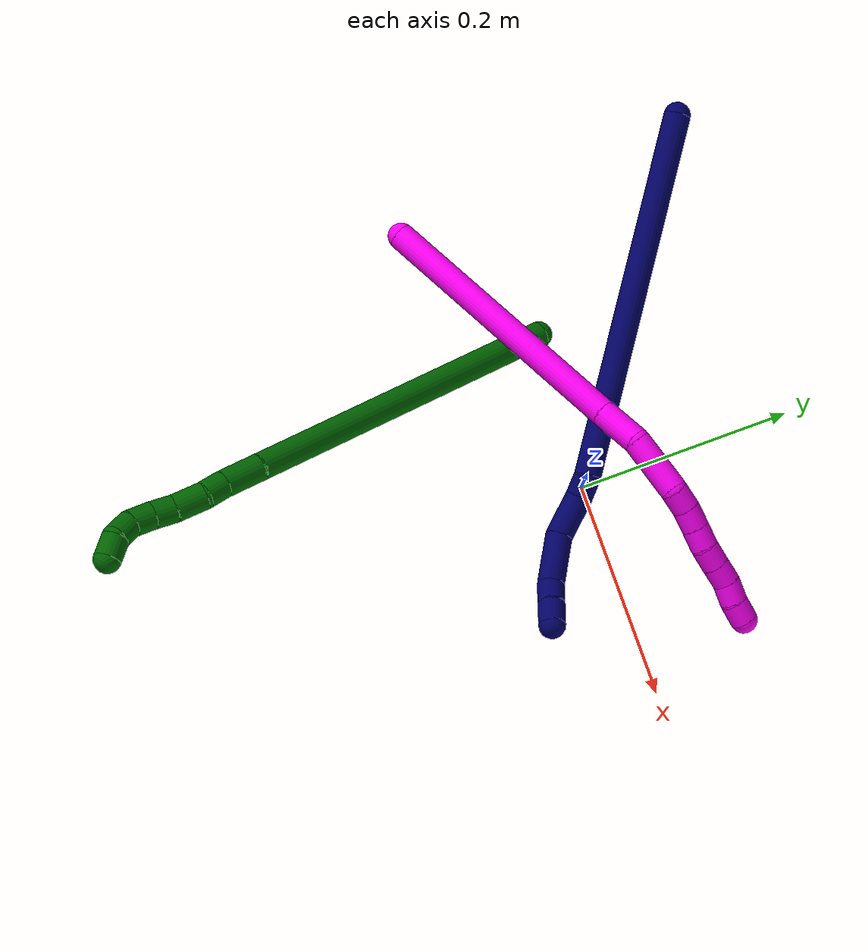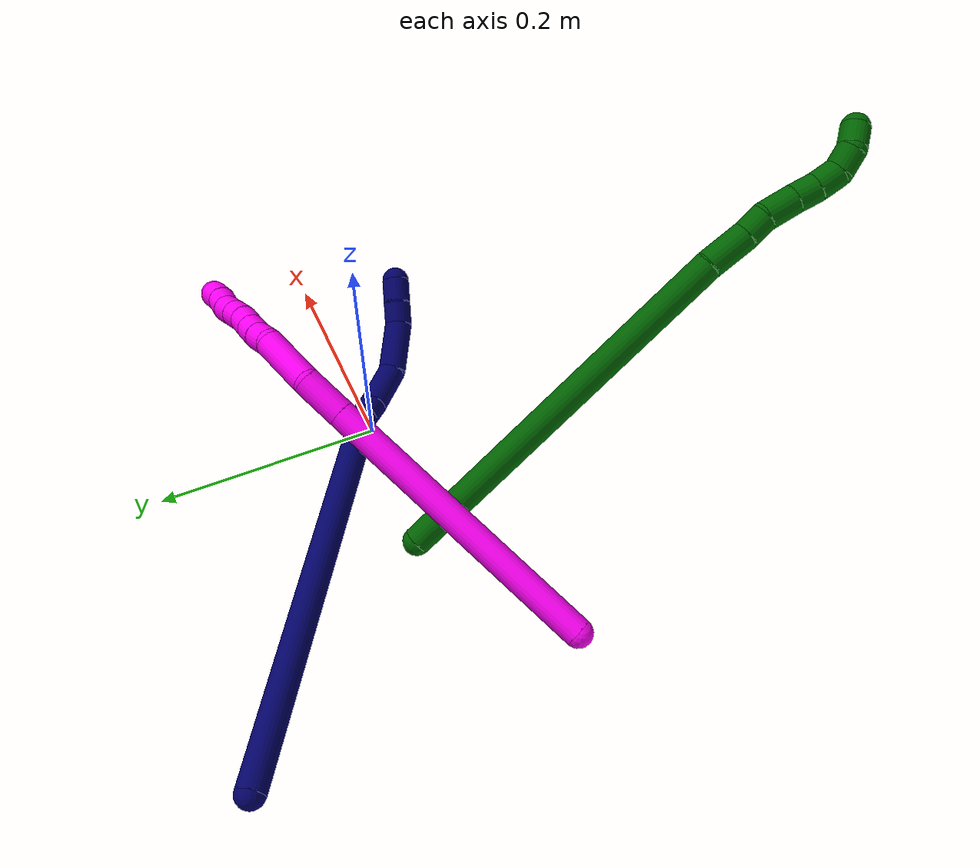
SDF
<sdf version="1.7">
 <world name="default">
  <model name="photoneo_s_sensor">
   <static>1</static>
   <pose>0 0 2 1.57079 1.57079 3.14159</pose>
   <link name="link">
    <inertial><mass>0.1</mass></inertial>
    <sensor name="sensor" type="depth">
     <update_rate>30</update_rate>
     <camera>
      <horizontal_fov>1.22</horizontal_fov>
      <image><width>1920</width><height>1200</height><format>B8G8R8</format></image>
      <clip><near>0.1</near><far>2</far></clip>
      <depth_camera><output>points</output></depth_camera>
     </camera>
     <plugin name="camera_plugin" filename="libgazebo_ros_depth_camera.so">
      <baseline>0.2</baseline>
      <alwaysOn>1</alwaysOn>
      <updateRate>0.0</updateRate>
      <cameraName>camera_ir</cameraName>
      <imageTopicName>/camera/color/image_raw</imageTopicName>
      <cameraInfoTopicName>/camera/color/camera_info</cameraInfoTopicName>
      <depthImageTopicName>/camera/depth/image_raw</depthImageTopicName>
      <depthImageCameraInfoTopicName>/camera/depth/camera_info</depthImageCameraInfoTopicName>
      <pointCloudTopicName>/camera/depth/points</pointCloudTopicName>
      <frameName>fr_optical</frameName>
      <pointCloudCutoff>0.1</pointCloudCutoff>
      <pointCloudCutoffMax>2.0</pointCloudCutoffMax>
      <distortionK1>0</distortionK1>
      <distortionK2>0</distortionK2>
      <distortionK3>0</distortionK3>
      <distortionT1>0</distortionT1>
      <distortionT2>0</distortionT2>
      <CxPrime>0</CxPrime>
      <Cx>0</Cx>
      <Cy>0</Cy>
      <focalLength>0</focalLength>
      <hackBaseline>0</hackBaseline>
     </plugin>
    </sensor>
   </link>
  </model>
  <model name="bin">
   <static>1</static>
   <link name="bottom">
    <collision name="collision-bottom">
     <pose>0 0 -0.01 0 -0 0</pose>
     <geometry><box><size>0.8 0.6 0.02</size></box></geometry>
     <surface>
      <friction><ode><mu>100</mu><mu2>100</mu2></ode></friction>
      <contact><collide_bitmask>65535</collide_bitmask></contact>
     </surface>
    </collision>
   </link>
   <link name="west_wall">
    <collision name="collision-west_wall">
     <pose>-0.41 0 0.1 0 -0 0</pose>
     <geometry><box><size>0.02 0.6 0.2</size></box></geometry>
     <surface>
      <friction><ode><mu>100</mu><mu2>100</mu2></ode></friction>
      <contact><collide_bitmask>65535</collide_bitmask></contact>
     </surface>
    </collision>
   </link>
   <link name="east_wall">
    <collision name="collision-east_wall">
     <pose>0.41 0 0.1 0 -0 0</pose>
     <geometry><box><size>0.02 0.6 0.2</size></box></geometry>
     <surface>
      <friction><ode><mu>100</mu><mu2>100</mu2></ode></friction>
      <contact><collide_bitmask>65535</collide_bitmask></contact>
     </surface>
    </collision>
   </link>
   <link name="south_wall">
    <collision name="collision-south_wall">
     <pose>0 -0.31 0.1 0 -0 0</pose>
     <geometry><box><size>0.8 0.02 0.2</size></box></geometry>
     <surface>
      <friction><ode><mu>100</mu><mu2>100</mu2></ode></friction>
      <contact><collide_bitmask>65535</collide_bitmask></contact>
     </surface>
    </collision>
   </link>
   <link name="north_wall">
    <collision name="collision-north_wall">
     <pose>0 0.31 0.1 0 -0 0</pose>
     <geometry><box><size>0.8 0.02 0.2</size></box></geometry>
     <surface>
      <friction><ode><mu>100</mu><mu2>100</mu2></ode></friction>
      <contact><collide_bitmask>65535</collide_bitmask></contact>
     </surface>
    </collision>
   </link>
  </model>
  <model name="6">
   <static>0</static>
   <link name="6">
    <collision name="collision-cylinder-e_1_1_4">
     <pose>-0.001159 -0.025586 0.163083 0.155622 -0.007019 -0.000547</pose>
     <geometry><cylinder><radius>0.0125</radius><length>0.330163</length></cylinder></geometry>
     <surface>
      <friction><ode><mu>1.16</mu><mu2>1.16</mu2><slip1>0</slip1><slip2>0</slip2></ode></friction>
      <contact><ode><kp>1e+06</kp><kd>1</kd><max_vel>0</max_vel><min_depth>0.001</min_depth></ode></contact>
     </surface>
    </collision>
    <visual name="visual-cylinder-e_1_1_4">
     <pose>-0.001159 -0.025586 0.163083 0.155622 -0.007019 -0.000547</pose>
     <geometry><cylinder><radius>0.0125</radius><length>0.330163</length></cylinder></geometry>
     <material><ambient>0 0.392157 0.003922 1</ambient></material>
    </visual>
    <collision name="collision-cylinder-e_2_4_5">
     <pose>-4.7e-05 -0.055048 0.344298 0.210563 0.121848 0.012892</pose>
     <geometry><cylinder><radius>0.0125</radius><length>0.037361</length></cylinder></geometry>
     <surface>
      <friction><ode><mu>1.16</mu><mu2>1.16</mu2><slip1>0</slip1><slip2>0</slip2></ode></friction>
      <contact><ode><kp>1e+06</kp><kd>1</kd><max_vel>0</max_vel><min_depth>0.001</min_depth></ode></contact>
     </surface>
    </collision>
    <visual name="visual-cylinder-e_2_4_5">
     <pose>-4.7e-05 -0.055048 0.344298 0.210563 0.121848 0.012892</pose>
     <geometry><cylinder><radius>0.0125</radius><length>0.037361</length></cylinder></geometry>
     <material><ambient>0 0.392157 0.003922 1</ambient></material>
    </visual>
    <collision name="collision-cylinder-e_3_5_6">
     <pose>0.003208 -0.06004 0.372867 0.106591 0.093487 0.004991</pose>
     <geometry><cylinder><radius>0.0125</radius><length>0.021084</length></cylinder></geometry>
     <surface>
      <friction><ode><mu>1.16</mu><mu2>1.16</mu2><slip1>0</slip1><slip2>0</slip2></ode></friction>
      <contact><ode><kp>1e+06</kp><kd>1</kd><max_vel>0</max_vel><min_depth>0.001</min_depth></ode></contact>
     </surface>
    </collision>
    <visual name="visual-cylinder-e_3_5_6">
     <pose>0.003208 -0.06004 0.372867 0.106591 0.093487 0.004991</pose>
     <geometry><cylinder><radius>0.0125</radius><length>0.021084</length></cylinder></geometry>
     <material><ambient>0 0.392157 0.003922 1</ambient></material>
    </visual>
    <collision name="collision-cylinder-e_4_6_7">
     <pose>0.008081 -0.065366 0.396432 0.310272 0.274978 0.043271</pose>
     <geometry><cylinder><radius>0.0125</radius><length>0.028649</length></cylinder></geometry>
     <surface>
      <friction><ode><mu>1.16</mu><mu2>1.16</mu2><slip1>0</slip1><slip2>0</slip2></ode></friction>
      <contact><ode><kp>1e+06</kp><kd>1</kd><max_vel>0</max_vel><min_depth>0.001</min_depth></ode></contact>
     </surface>
    </collision>
    <visual name="visual-cylinder-e_4_6_7">
     <pose>0.008081 -0.065366 0.396432 0.310272 0.274978 0.043271</pose>
     <geometry><cylinder><radius>0.0125</radius><length>0.028649</length></cylinder></geometry>
     <material><ambient>0 0.392157 0.003922 1</ambient></material>
    </visual>
    <collision name="collision-cylinder-e_5_7_8">
     <pose>0.013798 -0.073404 0.418823 0.391924 0.180335 0.035892</pose>
     <geometry><cylinder><radius>0.0125</radius><length>0.020378</length></cylinder></geometry>
     <surface>
      <friction><ode><mu>1.16</mu><mu2>1.16</mu2><slip1>0</slip1><slip2>0</slip2></ode></friction>
      <contact><ode><kp>1e+06</kp><kd>1</kd><max_vel>0</max_vel><min_depth>0.001</min_depth></ode></contact>
     </surface>
    </collision>
    <visual name="visual-cylinder-e_5_7_8">
     <pose>0.013798 -0.073404 0.418823 0.391924 0.180335 0.035892</pose>
     <geometry><cylinder><radius>0.0125</radius><length>0.020378</length></cylinder></geometry>
     <material><ambient>0 0.392157 0.003922 1</ambient></material>
    </visual>
    <collision name="collision-cylinder-e_6_8_9">
     <pose>0.016792 -0.08016 0.43816 0.282811 0.11071 0.015776</pose>
     <geometry><cylinder><radius>0.0125</radius><length>0.021109</length></cylinder></geometry>
     <surface>
      <friction><ode><mu>1.16</mu><mu2>1.16</mu2><slip1>0</slip1><slip2>0</slip2></ode></friction>
      <contact><ode><kp>1e+06</kp><kd>1</kd><max_vel>0</max_vel><min_depth>0.001</min_depth></ode></contact>
     </surface>
    </collision>
    <visual name="visual-cylinder-e_6_8_9">
     <pose>0.016792 -0.08016 0.43816 0.282811 0.11071 0.015776</pose>
     <geometry><cylinder><radius>0.0125</radius><length>0.021109</length></cylinder></geometry>
     <material><ambient>0 0.392157 0.003922 1</ambient></material>
    </visual>
    <collision name="collision-cylinder-e_7_9_10">
     <pose>0.017843 -0.081774 0.458342 -0.129163 -0.011324 0.000732</pose>
     <geometry><cylinder><radius>0.0125</radius><length>0.020387</length></cylinder></geometry>
     <surface>
      <friction><ode><mu>1.16</mu><mu2>1.16</mu2><slip1>0</slip1><slip2>0</slip2></ode></friction>
      <contact><ode><kp>1e+06</kp><kd>1</kd><max_vel>0</max_vel><min_depth>0.001</min_depth></ode></contact>
     </surface>
    </collision>
    <visual name="visual-cylinder-e_7_9_10">
     <pose>0.017843 -0.081774 0.458342 -0.129163 -0.011324 0.000732</pose>
     <geometry><cylinder><radius>0.0125</radius><length>0.020387</length></cylinder></geometry>
     <material><ambient>0 0.392157 0.003922 1</ambient></material>
    </visual>
    <collision name="collision-cylinder-e_8_10_2">
     <pose>0.020832 -0.075656 0.477175 -0.503414 0.302152 -0.078258</pose>
     <geometry><cylinder><radius>0.0125</radius><length>0.020868</length></cylinder></geometry>
     <surface>
      <friction><ode><mu>1.16</mu><mu2>1.16</mu2><slip1>0</slip1><slip2>0</slip2></ode></friction>
      <contact><ode><kp>1e+06</kp><kd>1</kd><max_vel>0</max_vel><min_depth>0.001</min_depth></ode></contact>
     </surface>
    </collision>
    <visual name="visual-cylinder-e_8_10_2">
     <pose>0.020832 -0.075656 0.477175 -0.503414 0.302152 -0.078258</pose>
     <geometry><cylinder><radius>0.0125</radius><length>0.020868</length></cylinder></geometry>
     <material><ambient>0 0.392157 0.003922 1</ambient></material>
    </visual>
    <collision name="collision-sphere-2">
     <pose>0.023937 -0.07085 0.485901 0 -0 0</pose>
     <geometry><sphere><radius>0.0125</radius></sphere></geometry>
     <surface>
      <friction><ode><mu>1.16</mu><mu2>1.16</mu2><slip1>0</slip1><slip2>0</slip2></ode></friction>
      <contact><ode><kp>1e+06</kp><kd>1</kd><max_vel>0</max_vel><min_depth>0.001</min_depth></ode></contact>
     </surface>
    </collision>
    <visual name="visual-sphere-2">
     <pose>0.023937 -0.07085 0.485901 0 -0 0</pose>
     <geometry><sphere><radius>0.0125</radius></sphere></geometry>
     <material><ambient>0 0.392157 0.003922 1</ambient></material>
    </visual>
    <collision name="collision-sphere-10">
     <pose>0.017727 -0.080461 0.46845 0 -0 0</pose>
     <geometry><sphere><radius>0.0125</radius></sphere></geometry>
     <surface>
      <friction><ode><mu>1.16</mu><mu2>1.16</mu2><slip1>0</slip1><slip2>0</slip2></ode></friction>
      <contact><ode><kp>1e+06</kp><kd>1</kd><max_vel>0</max_vel><min_depth>0.001</min_depth></ode></contact>
     </surface>
    </collision>
    <visual name="visual-sphere-10">
     <pose>0.017727 -0.080461 0.46845 0 -0 0</pose>
     <geometry><sphere><radius>0.0125</radius></sphere></geometry>
     <material><ambient>0 0.392157 0.003922 1</ambient></material>
    </visual>
    <collision name="collision-sphere-9">
     <pose>0.017958 -0.083087 0.448234 0 -0 0</pose>
     <geometry><sphere><radius>0.0125</radius></sphere></geometry>
     <surface>
      <friction><ode><mu>1.16</mu><mu2>1.16</mu2><slip1>0</slip1><slip2>0</slip2></ode></friction>
      <contact><ode><kp>1e+06</kp><kd>1</kd><max_vel>0</max_vel><min_depth>0.001</min_depth></ode></contact>
     </surface>
    </collision>
    <visual name="visual-sphere-9">
     <pose>0.017958 -0.083087 0.448234 0 -0 0</pose>
     <geometry><sphere><radius>0.0125</radius></sphere></geometry>
     <material><ambient>0 0.392157 0.003922 1</ambient></material>
    </visual>
    <collision name="collision-sphere-4">
     <pose>-0.002317 -0.051172 0.326165 0 -0 0</pose>
     <geometry><sphere><radius>0.0125</radius></sphere></geometry>
     <surface>
      <friction><ode><mu>1.16</mu><mu2>1.16</mu2><slip1>0</slip1><slip2>0</slip2></ode></friction>
      <contact><ode><kp>1e+06</kp><kd>1</kd><max_vel>0</max_vel><min_depth>0.001</min_depth></ode></contact>
     </surface>
    </collision>
    <visual name="visual-sphere-4">
     <pose>-0.002317 -0.051172 0.326165 0 -0 0</pose>
     <geometry><sphere><radius>0.0125</radius></sphere></geometry>
     <material><ambient>0 0.392157 0.003922 1</ambient></material>
    </visual>
    <collision name="collision-sphere-1">
     <geometry><sphere><radius>0.0125</radius></sphere></geometry>
     <surface>
      <friction><ode><mu>1.16</mu><mu2>1.16</mu2><slip1>0</slip1><slip2>0</slip2></ode></friction>
      <contact><ode><kp>1e+06</kp><kd>1</kd><max_vel>0</max_vel><min_depth>0.001</min_depth></ode></contact>
     </surface>
    </collision>
    <visual name="visual-sphere-1">
     <geometry><sphere><radius>0.0125</radius></sphere></geometry>
     <material><ambient>0 0.392157 0.003922 1</ambient></material>
    </visual>
    <collision name="collision-sphere-8">
     <pose>0.015626 -0.077232 0.428087 0 -0 0</pose>
     <geometry><sphere><radius>0.0125</radius></sphere></geometry>
     <surface>
      <friction><ode><mu>1.16</mu><mu2>1.16</mu2><slip1>0</slip1><slip2>0</slip2></ode></friction>
      <contact><ode><kp>1e+06</kp><kd>1</kd><max_vel>0</max_vel><min_depth>0.001</min_depth></ode></contact>
     </surface>
    </collision>
    <visual name="visual-sphere-8">
     <pose>0.015626 -0.077232 0.428087 0 -0 0</pose>
     <geometry><sphere><radius>0.0125</radius></sphere></geometry>
     <material><ambient>0 0.392157 0.003922 1</ambient></material>
    </visual>
    <collision name="collision-sphere-5">
     <pose>0.002224 -0.058923 0.36243 0 -0 0</pose>
     <geometry><sphere><radius>0.0125</radius></sphere></geometry>
     <surface>
      <friction><ode><mu>1.16</mu><mu2>1.16</mu2><slip1>0</slip1><slip2>0</slip2></ode></friction>
      <contact><ode><kp>1e+06</kp><kd>1</kd><max_vel>0</max_vel><min_depth>0.001</min_depth></ode></contact>
     </surface>
    </collision>
    <visual name="visual-sphere-5">
     <pose>0.002224 -0.058923 0.36243 0 -0 0</pose>
     <geometry><sphere><radius>0.0125</radius></sphere></geometry>
     <material><ambient>0 0.392157 0.003922 1</ambient></material>
    </visual>
    <collision name="collision-sphere-6">
     <pose>0.004192 -0.061156 0.383303 0 -0 0</pose>
     <geometry><sphere><radius>0.0125</radius></sphere></geometry>
     <surface>
      <friction><ode><mu>1.16</mu><mu2>1.16</mu2><slip1>0</slip1><slip2>0</slip2></ode></friction>
      <contact><ode><kp>1e+06</kp><kd>1</kd><max_vel>0</max_vel><min_depth>0.001</min_depth></ode></contact>
     </surface>
    </collision>
    <visual name="visual-sphere-6">
     <pose>0.004192 -0.061156 0.383303 0 -0 0</pose>
     <geometry><sphere><radius>0.0125</radius></sphere></geometry>
     <material><ambient>0 0.392157 0.003922 1</ambient></material>
    </visual>
    <collision name="collision-sphere-7">
     <pose>0.011971 -0.069575 0.40956 0 -0 0</pose>
     <geometry><sphere><radius>0.0125</radius></sphere></geometry>
     <surface>
      <friction><ode><mu>1.16</mu><mu2>1.16</mu2><slip1>0</slip1><slip2>0</slip2></ode></friction>
      <contact><ode><kp>1e+06</kp><kd>1</kd><max_vel>0</max_vel><min_depth>0.001</min_depth></ode></contact>
     </surface>
    </collision>
    <visual name="visual-sphere-7">
     <pose>0.011971 -0.069575 0.40956 0 -0 0</pose>
     <geometry><sphere><radius>0.0125</radius></sphere></geometry>
     <material><ambient>0 0.392157 0.003922 1</ambient></material>
    </visual>
    <inertial>
     <pose>0.002698 -0.040153 0.246024 0 -0 0</pose>
     <mass>0.5</mass>
     <inertia>
      <ixx>0.003029</ixx>
      <ixy>0</ixy>
      <ixz>0</ixz>
      <iyy>0.002985</iyy>
      <iyz>0</iyz>
      <izz>0.000526</izz>
     </inertia>
    </inertial>
   </link>
   <pose>-0.144144 0.011184 0.021771 0.283887 0.951537 -0.897248</pose>
  </model>
  <model name="7">
   <static>0</static>
   <link name="7">
    <collision name="collision-cylinder-e_1_1_4">
     <pose>0.08395 -0.134804 -0.069153 2.04478 0.505985 0.800673</pose>
     <geometry><cylinder><radius>0.0125</radius><length>0.346422</length></cylinder></geometry>
     <surface>
      <friction><ode><mu>1.16</mu><mu2>1.16</mu2><slip1>0</slip1><slip2>0</slip2></ode></friction>
      <contact><ode><kp>1e+06</kp><kd>1</kd><max_vel>0</max_vel><min_depth>0.001</min_depth></ode></contact>
     </surface>
    </collision>
    <visual name="visual-cylinder-e_1_1_4">
     <pose>0.08395 -0.134804 -0.069153 2.04478 0.505985 0.800673</pose>
     <geometry><cylinder><radius>0.0125</radius><length>0.346422</length></cylinder></geometry>
     <material><ambient>0.003922 0 0.403922 1</ambient></material>
    </visual>
    <collision name="collision-cylinder-e_2_4_5">
     <pose>0.171614 -0.275886 -0.145814 2.44513 0.362706 0.935451</pose>
     <geometry><cylinder><radius>0.0125</radius><length>0.020934</length></cylinder></geometry>
     <surface>
      <friction><ode><mu>1.16</mu><mu2>1.16</mu2><slip1>0</slip1><slip2>0</slip2></ode></friction>
      <contact><ode><kp>1e+06</kp><kd>1</kd><max_vel>0</max_vel><min_depth>0.001</min_depth></ode></contact>
     </surface>
    </collision>
    <visual name="visual-cylinder-e_2_4_5">
     <pose>0.171614 -0.275886 -0.145814 2.44513 0.362706 0.935451</pose>
     <geometry><cylinder><radius>0.0125</radius><length>0.020934</length></cylinder></geometry>
     <material><ambient>0.003922 0 0.403922 1</ambient></material>
    </visual>
    <collision name="collision-cylinder-e_3_5_6">
     <pose>0.180911 -0.300161 -0.161546 1.99948 0.27503 0.424324</pose>
     <geometry><cylinder><radius>0.0125</radius><length>0.04112</length></cylinder></geometry>
     <surface>
      <friction><ode><mu>1.16</mu><mu2>1.16</mu2><slip1>0</slip1><slip2>0</slip2></ode></friction>
      <contact><ode><kp>1e+06</kp><kd>1</kd><max_vel>0</max_vel><min_depth>0.001</min_depth></ode></contact>
     </surface>
    </collision>
    <visual name="visual-cylinder-e_3_5_6">
     <pose>0.180911 -0.300161 -0.161546 1.99948 0.27503 0.424324</pose>
     <geometry><cylinder><radius>0.0125</radius><length>0.04112</length></cylinder></geometry>
     <material><ambient>0.003922 0 0.403922 1</ambient></material>
    </visual>
    <collision name="collision-cylinder-e_4_6_7">
     <pose>0.198645 -0.338598 -0.17286 1.72078 0.531362 0.612729</pose>
     <geometry><cylinder><radius>0.0125</radius><length>0.047957</length></cylinder></geometry>
     <surface>
      <friction><ode><mu>1.16</mu><mu2>1.16</mu2><slip1>0</slip1><slip2>0</slip2></ode></friction>
      <contact><ode><kp>1e+06</kp><kd>1</kd><max_vel>0</max_vel><min_depth>0.001</min_depth></ode></contact>
     </surface>
    </collision>
    <visual name="visual-cylinder-e_4_6_7">
     <pose>0.198645 -0.338598 -0.17286 1.72078 0.531362 0.612729</pose>
     <geometry><cylinder><radius>0.0125</radius><length>0.047957</length></cylinder></geometry>
     <material><ambient>0.003922 0 0.403922 1</ambient></material>
    </visual>
    <collision name="collision-cylinder-e_5_7_8">
     <pose>0.216679 -0.36764 -0.17418 1.36798 0.590359 0.485994</pose>
     <geometry><cylinder><radius>0.0125</radius><length>0.021142</length></cylinder></geometry>
     <surface>
      <friction><ode><mu>1.16</mu><mu2>1.16</mu2><slip1>0</slip1><slip2>0</slip2></ode></friction>
      <contact><ode><kp>1e+06</kp><kd>1</kd><max_vel>0</max_vel><min_depth>0.001</min_depth></ode></contact>
     </surface>
    </collision>
    <visual name="visual-cylinder-e_5_7_8">
     <pose>0.216679 -0.36764 -0.17418 1.36798 0.590359 0.485994</pose>
     <geometry><cylinder><radius>0.0125</radius><length>0.021142</length></cylinder></geometry>
     <material><ambient>0.003922 0 0.403922 1</ambient></material>
    </visual>
    <collision name="collision-cylinder-e_6_8_2">
     <pose>0.229244 -0.385193 -0.171425 1.46108 0.638206 0.575559</pose>
     <geometry><cylinder><radius>0.0125</radius><length>0.022425</length></cylinder></geometry>
     <surface>
      <friction><ode><mu>1.16</mu><mu2>1.16</mu2><slip1>0</slip1><slip2>0</slip2></ode></friction>
      <contact><ode><kp>1e+06</kp><kd>1</kd><max_vel>0</max_vel><min_depth>0.001</min_depth></ode></contact>
     </surface>
    </collision>
    <visual name="visual-cylinder-e_6_8_2">
     <pose>0.229244 -0.385193 -0.171425 1.46108 0.638206 0.575559</pose>
     <geometry><cylinder><radius>0.0125</radius><length>0.022425</length></cylinder></geometry>
     <material><ambient>0.003922 0 0.403922 1</ambient></material>
    </visual>
    <collision name="collision-sphere-2">
     <pose>0.235924 -0.394145 -0.170438 0 -0 0</pose>
     <geometry><sphere><radius>0.0125</radius></sphere></geometry>
     <surface>
      <friction><ode><mu>1.16</mu><mu2>1.16</mu2><slip1>0</slip1><slip2>0</slip2></ode></friction>
      <contact><ode><kp>1e+06</kp><kd>1</kd><max_vel>0</max_vel><min_depth>0.001</min_depth></ode></contact>
     </surface>
    </collision>
    <visual name="visual-sphere-2">
     <pose>0.235924 -0.394145 -0.170438 0 -0 0</pose>
     <geometry><sphere><radius>0.0125</radius></sphere></geometry>
     <material><ambient>0.003922 0 0.403922 1</ambient></material>
    </visual>
    <collision name="collision-sphere-4">
     <pose>0.1679 -0.269608 -0.138307 0 -0 0</pose>
     <geometry><sphere><radius>0.0125</radius></sphere></geometry>
     <surface>
      <friction><ode><mu>1.16</mu><mu2>1.16</mu2><slip1>0</slip1><slip2>0</slip2></ode></friction>
      <contact><ode><kp>1e+06</kp><kd>1</kd><max_vel>0</max_vel><min_depth>0.001</min_depth></ode></contact>
     </surface>
    </collision>
    <visual name="visual-sphere-4">
     <pose>0.1679 -0.269608 -0.138307 0 -0 0</pose>
     <geometry><sphere><radius>0.0125</radius></sphere></geometry>
     <material><ambient>0.003922 0 0.403922 1</ambient></material>
    </visual>
    <collision name="collision-sphere-1">
     <geometry><sphere><radius>0.0125</radius></sphere></geometry>
     <surface>
      <friction><ode><mu>1.16</mu><mu2>1.16</mu2><slip1>0</slip1><slip2>0</slip2></ode></friction>
      <contact><ode><kp>1e+06</kp><kd>1</kd><max_vel>0</max_vel><min_depth>0.001</min_depth></ode></contact>
     </surface>
    </collision>
    <visual name="visual-sphere-1">
     <geometry><sphere><radius>0.0125</radius></sphere></geometry>
     <material><ambient>0.003922 0 0.403922 1</ambient></material>
    </visual>
    <collision name="collision-sphere-8">
     <pose>0.222564 -0.376242 -0.172411 0 -0 0</pose>
     <geometry><sphere><radius>0.0125</radius></sphere></geometry>
     <surface>
      <friction><ode><mu>1.16</mu><mu2>1.16</mu2><slip1>0</slip1><slip2>0</slip2></ode></friction>
      <contact><ode><kp>1e+06</kp><kd>1</kd><max_vel>0</max_vel><min_depth>0.001</min_depth></ode></contact>
     </surface>
    </collision>
    <visual name="visual-sphere-8">
     <pose>0.222564 -0.376242 -0.172411 0 -0 0</pose>
     <geometry><sphere><radius>0.0125</radius></sphere></geometry>
     <material><ambient>0.003922 0 0.403922 1</ambient></material>
    </visual>
    <collision name="collision-sphere-5">
     <pose>0.175327 -0.282164 -0.153321 0 -0 0</pose>
     <geometry><sphere><radius>0.0125</radius></sphere></geometry>
     <surface>
      <friction><ode><mu>1.16</mu><mu2>1.16</mu2><slip1>0</slip1><slip2>0</slip2></ode></friction>
      <contact><ode><kp>1e+06</kp><kd>1</kd><max_vel>0</max_vel><min_depth>0.001</min_depth></ode></contact>
     </surface>
    </collision>
    <visual name="visual-sphere-5">
     <pose>0.175327 -0.282164 -0.153321 0 -0 0</pose>
     <geometry><sphere><radius>0.0125</radius></sphere></geometry>
     <material><ambient>0.003922 0 0.403922 1</ambient></material>
    </visual>
    <collision name="collision-sphere-6">
     <pose>0.186495 -0.318158 -0.169771 0 -0 0</pose>
     <geometry><sphere><radius>0.0125</radius></sphere></geometry>
     <surface>
      <friction><ode><mu>1.16</mu><mu2>1.16</mu2><slip1>0</slip1><slip2>0</slip2></ode></friction>
      <contact><ode><kp>1e+06</kp><kd>1</kd><max_vel>0</max_vel><min_depth>0.001</min_depth></ode></contact>
     </surface>
    </collision>
    <visual name="visual-sphere-6">
     <pose>0.186495 -0.318158 -0.169771 0 -0 0</pose>
     <geometry><sphere><radius>0.0125</radius></sphere></geometry>
     <material><ambient>0.003922 0 0.403922 1</ambient></material>
    </visual>
    <collision name="collision-sphere-7">
     <pose>0.210795 -0.359039 -0.175949 0 -0 0</pose>
     <geometry><sphere><radius>0.0125</radius></sphere></geometry>
     <surface>
      <friction><ode><mu>1.16</mu><mu2>1.16</mu2><slip1>0</slip1><slip2>0</slip2></ode></friction>
      <contact><ode><kp>1e+06</kp><kd>1</kd><max_vel>0</max_vel><min_depth>0.001</min_depth></ode></contact>
     </surface>
    </collision>
    <visual name="visual-sphere-7">
     <pose>0.210795 -0.359039 -0.175949 0 -0 0</pose>
     <geometry><sphere><radius>0.0125</radius></sphere></geometry>
     <material><ambient>0.003922 0 0.403922 1</ambient></material>
    </visual>
    <inertial>
     <pose>0.118724 -0.194932 -0.098936 0 -0 0</pose>
     <mass>0.5</mass>
     <inertia>
      <ixx>0.004349</ixx>
      <ixy>0</ixy>
      <ixz>0</ixz>
      <iyy>0.002136</iyy>
      <iyz>0</iyz>
      <izz>0.001017</izz>
     </inertia>
    </inertial>
   </link>
   <pose>-0.292697 0.202187 0.011496 -0.568271 0.043485 0.463706</pose>
  </model>
  <model name="10">
   <static>0</static>
   <link name="10">
    <collision name="collision-cylinder-e_1_1_4">
     <pose>0.10389 0.077275 0.024852 -1.25964 0.907541 -0.683069</pose>
     <geometry><cylinder><radius>0.0125</radius><length>0.263684</length></cylinder></geometry>
     <surface>
      <friction><ode><mu>1.16</mu><mu2>1.16</mu2><slip1>0</slip1><slip2>0</slip2></ode></friction>
      <contact><ode><kp>1e+06</kp><kd>1</kd><max_vel>0</max_vel><min_depth>0.001</min_depth></ode></contact>
     </surface>
    </collision>
    <visual name="visual-cylinder-e_1_1_4">
     <pose>0.10389 0.077275 0.024852 -1.25964 0.907541 -0.683069</pose>
     <geometry><cylinder><radius>0.0125</radius><length>0.263684</length></cylinder></geometry>
     <material><ambient>1 0 0.964706 1</ambient></material>
    </visual>
    <collision name="collision-cylinder-e_2_4_5">
     <pose>0.223682 0.166873 0.054303 -1.21357 0.879724 -0.631488</pose>
     <geometry><cylinder><radius>0.0125</radius><length>0.041272</length></cylinder></geometry>
     <surface>
      <friction><ode><mu>1.16</mu><mu2>1.16</mu2><slip1>0</slip1><slip2>0</slip2></ode></friction>
      <contact><ode><kp>1e+06</kp><kd>1</kd><max_vel>0</max_vel><min_depth>0.001</min_depth></ode></contact>
     </surface>
    </collision>
    <visual name="visual-cylinder-e_2_4_5">
     <pose>0.223682 0.166873 0.054303 -1.21357 0.879724 -0.631488</pose>
     <geometry><cylinder><radius>0.0125</radius><length>0.041272</length></cylinder></geometry>
     <material><ambient>1 0 0.964706 1</ambient></material>
    </visual>
    <collision name="collision-cylinder-e_3_5_6">
     <pose>0.264414 0.190097 0.057659 -1.68433 1.15472 -1.26103</pose>
     <geometry><cylinder><radius>0.0125</radius><length>0.054293</length></cylinder></geometry>
     <surface>
      <friction><ode><mu>1.16</mu><mu2>1.16</mu2><slip1>0</slip1><slip2>0</slip2></ode></friction>
      <contact><ode><kp>1e+06</kp><kd>1</kd><max_vel>0</max_vel><min_depth>0.001</min_depth></ode></contact>
     </surface>
    </collision>
    <visual name="visual-cylinder-e_3_5_6">
     <pose>0.264414 0.190097 0.057659 -1.68433 1.15472 -1.26103</pose>
     <geometry><cylinder><radius>0.0125</radius><length>0.054293</length></cylinder></geometry>
     <material><ambient>1 0 0.964706 1</ambient></material>
    </visual>
    <collision name="collision-cylinder-e_4_6_7">
     <pose>0.298191 0.203722 0.051948 -2.59422 1.04147 -2.23121</pose>
     <geometry><cylinder><radius>0.0125</radius><length>0.020729</length></cylinder></geometry>
     <surface>
      <friction><ode><mu>1.16</mu><mu2>1.16</mu2><slip1>0</slip1><slip2>0</slip2></ode></friction>
      <contact><ode><kp>1e+06</kp><kd>1</kd><max_vel>0</max_vel><min_depth>0.001</min_depth></ode></contact>
     </surface>
    </collision>
    <visual name="visual-cylinder-e_4_6_7">
     <pose>0.298191 0.203722 0.051948 -2.59422 1.04147 -2.23121</pose>
     <geometry><cylinder><radius>0.0125</radius><length>0.020729</length></cylinder></geometry>
     <material><ambient>1 0 0.964706 1</ambient></material>
    </visual>
    <collision name="collision-cylinder-e_5_7_8">
     <pose>0.316274 0.20802 0.043726 -2.74431 1.15175 -2.54034</pose>
     <geometry><cylinder><radius>0.0125</radius><length>0.020004</length></cylinder></geometry>
     <surface>
      <friction><ode><mu>1.16</mu><mu2>1.16</mu2><slip1>0</slip1><slip2>0</slip2></ode></friction>
      <contact><ode><kp>1e+06</kp><kd>1</kd><max_vel>0</max_vel><min_depth>0.001</min_depth></ode></contact>
     </surface>
    </collision>
    <visual name="visual-cylinder-e_5_7_8">
     <pose>0.316274 0.20802 0.043726 -2.74431 1.15175 -2.54034</pose>
     <geometry><cylinder><radius>0.0125</radius><length>0.020004</length></cylinder></geometry>
     <material><ambient>1 0 0.964706 1</ambient></material>
    </visual>
    <collision name="collision-cylinder-e_6_8_9">
     <pose>0.334691 0.211075 0.036536 -2.73489 1.18746 -2.54861</pose>
     <geometry><cylinder><radius>0.0125</radius><length>0.020014</length></cylinder></geometry>
     <surface>
      <friction><ode><mu>1.16</mu><mu2>1.16</mu2><slip1>0</slip1><slip2>0</slip2></ode></friction>
      <contact><ode><kp>1e+06</kp><kd>1</kd><max_vel>0</max_vel><min_depth>0.001</min_depth></ode></contact>
     </surface>
    </collision>
    <visual name="visual-cylinder-e_6_8_9">
     <pose>0.334691 0.211075 0.036536 -2.73489 1.18746 -2.54861</pose>
     <geometry><cylinder><radius>0.0125</radius><length>0.020014</length></cylinder></geometry>
     <material><ambient>1 0 0.964706 1</ambient></material>
    </visual>
    <collision name="collision-cylinder-e_7_9_10">
     <pose>0.352578 0.214742 0.028498 -2.69785 1.03643 -2.38812</pose>
     <geometry><cylinder><radius>0.0125</radius><length>0.020001</length></cylinder></geometry>
     <surface>
      <friction><ode><mu>1.16</mu><mu2>1.16</mu2><slip1>0</slip1><slip2>0</slip2></ode></friction>
      <contact><ode><kp>1e+06</kp><kd>1</kd><max_vel>0</max_vel><min_depth>0.001</min_depth></ode></contact>
     </surface>
    </collision>
    <visual name="visual-cylinder-e_7_9_10">
     <pose>0.352578 0.214742 0.028498 -2.69785 1.03643 -2.38812</pose>
     <geometry><cylinder><radius>0.0125</radius><length>0.020001</length></cylinder></geometry>
     <material><ambient>1 0 0.964706 1</ambient></material>
    </visual>
    <collision name="collision-cylinder-e_8_10_11">
     <pose>0.369735 0.219312 0.019293 -2.66419 1.02567 -2.32576</pose>
     <geometry><cylinder><radius>0.0125</radius><length>0.020001</length></cylinder></geometry>
     <surface>
      <friction><ode><mu>1.16</mu><mu2>1.16</mu2><slip1>0</slip1><slip2>0</slip2></ode></friction>
      <contact><ode><kp>1e+06</kp><kd>1</kd><max_vel>0</max_vel><min_depth>0.001</min_depth></ode></contact>
     </surface>
    </collision>
    <visual name="visual-cylinder-e_8_10_11">
     <pose>0.369735 0.219312 0.019293 -2.66419 1.02567 -2.32576</pose>
     <geometry><cylinder><radius>0.0125</radius><length>0.020001</length></cylinder></geometry>
     <material><ambient>1 0 0.964706 1</ambient></material>
    </visual>
    <collision name="collision-cylinder-e_9_11_12">
     <pose>0.387711 0.222486 0.011438 -2.9027 1.22985 -2.80495</pose>
     <geometry><cylinder><radius>0.0125</radius><length>0.02</length></cylinder></geometry>
     <surface>
      <friction><ode><mu>1.16</mu><mu2>1.16</mu2><slip1>0</slip1><slip2>0</slip2></ode></friction>
      <contact><ode><kp>1e+06</kp><kd>1</kd><max_vel>0</max_vel><min_depth>0.001</min_depth></ode></contact>
     </surface>
    </collision>
    <visual name="visual-cylinder-e_9_11_12">
     <pose>0.387711 0.222486 0.011438 -2.9027 1.22985 -2.80495</pose>
     <geometry><cylinder><radius>0.0125</radius><length>0.02</length></cylinder></geometry>
     <material><ambient>1 0 0.964706 1</ambient></material>
    </visual>
    <collision name="collision-cylinder-e_10_12_2">
     <pose>0.405979 0.225263 0.003963 -2.70231 1.08497 -2.43224</pose>
     <geometry><cylinder><radius>0.0125</radius><length>0.020002</length></cylinder></geometry>
     <surface>
      <friction><ode><mu>1.16</mu><mu2>1.16</mu2><slip1>0</slip1><slip2>0</slip2></ode></friction>
      <contact><ode><kp>1e+06</kp><kd>1</kd><max_vel>0</max_vel><min_depth>0.001</min_depth></ode></contact>
     </surface>
    </collision>
    <visual name="visual-cylinder-e_10_12_2">
     <pose>0.405979 0.225263 0.003963 -2.70231 1.08497 -2.43224</pose>
     <geometry><cylinder><radius>0.0125</radius><length>0.020002</length></cylinder></geometry>
     <material><ambient>1 0 0.964706 1</ambient></material>
    </visual>
    <collision name="collision-sphere-2">
     <pose>0.414822 0.227249 -0.000264 0 -0 0</pose>
     <geometry><sphere><radius>0.0125</radius></sphere></geometry>
     <surface>
      <friction><ode><mu>1.16</mu><mu2>1.16</mu2><slip1>0</slip1><slip2>0</slip2></ode></friction>
      <contact><ode><kp>1e+06</kp><kd>1</kd><max_vel>0</max_vel><min_depth>0.001</min_depth></ode></contact>
     </surface>
    </collision>
    <visual name="visual-sphere-2">
     <pose>0.414822 0.227249 -0.000264 0 -0 0</pose>
     <geometry><sphere><radius>0.0125</radius></sphere></geometry>
     <material><ambient>1 0 0.964706 1</ambient></material>
    </visual>
    <collision name="collision-sphere-12">
     <pose>0.397135 0.223277 0.008189 0 -0 0</pose>
     <geometry><sphere><radius>0.0125</radius></sphere></geometry>
     <surface>
      <friction><ode><mu>1.16</mu><mu2>1.16</mu2><slip1>0</slip1><slip2>0</slip2></ode></friction>
      <contact><ode><kp>1e+06</kp><kd>1</kd><max_vel>0</max_vel><min_depth>0.001</min_depth></ode></contact>
     </surface>
    </collision>
    <visual name="visual-sphere-12">
     <pose>0.397135 0.223277 0.008189 0 -0 0</pose>
     <geometry><sphere><radius>0.0125</radius></sphere></geometry>
     <material><ambient>1 0 0.964706 1</ambient></material>
    </visual>
    <collision name="collision-sphere-11">
     <pose>0.378286 0.221694 0.014687 0 -0 0</pose>
     <geometry><sphere><radius>0.0125</radius></sphere></geometry>
     <surface>
      <friction><ode><mu>1.16</mu><mu2>1.16</mu2><slip1>0</slip1><slip2>0</slip2></ode></friction>
      <contact><ode><kp>1e+06</kp><kd>1</kd><max_vel>0</max_vel><min_depth>0.001</min_depth></ode></contact>
     </surface>
    </collision>
    <visual name="visual-sphere-11">
     <pose>0.378286 0.221694 0.014687 0 -0 0</pose>
     <geometry><sphere><radius>0.0125</radius></sphere></geometry>
     <material><ambient>1 0 0.964706 1</ambient></material>
    </visual>
    <collision name="collision-sphere-10">
     <pose>0.361184 0.216929 0.023899 0 -0 0</pose>
     <geometry><sphere><radius>0.0125</radius></sphere></geometry>
     <surface>
      <friction><ode><mu>1.16</mu><mu2>1.16</mu2><slip1>0</slip1><slip2>0</slip2></ode></friction>
      <contact><ode><kp>1e+06</kp><kd>1</kd><max_vel>0</max_vel><min_depth>0.001</min_depth></ode></contact>
     </surface>
    </collision>
    <visual name="visual-sphere-10">
     <pose>0.361184 0.216929 0.023899 0 -0 0</pose>
     <geometry><sphere><radius>0.0125</radius></sphere></geometry>
     <material><ambient>1 0 0.964706 1</ambient></material>
    </visual>
    <collision name="collision-sphere-9">
     <pose>0.343971 0.212556 0.033098 0 -0 0</pose>
     <geometry><sphere><radius>0.0125</radius></sphere></geometry>
     <surface>
      <friction><ode><mu>1.16</mu><mu2>1.16</mu2><slip1>0</slip1><slip2>0</slip2></ode></friction>
      <contact><ode><kp>1e+06</kp><kd>1</kd><max_vel>0</max_vel><min_depth>0.001</min_depth></ode></contact>
     </surface>
    </collision>
    <visual name="visual-sphere-9">
     <pose>0.343971 0.212556 0.033098 0 -0 0</pose>
     <geometry><sphere><radius>0.0125</radius></sphere></geometry>
     <material><ambient>1 0 0.964706 1</ambient></material>
    </visual>
    <collision name="collision-sphere-4">
     <pose>0.207781 0.154551 0.049704 0 -0 0</pose>
     <geometry><sphere><radius>0.0125</radius></sphere></geometry>
     <surface>
      <friction><ode><mu>1.16</mu><mu2>1.16</mu2><slip1>0</slip1><slip2>0</slip2></ode></friction>
      <contact><ode><kp>1e+06</kp><kd>1</kd><max_vel>0</max_vel><min_depth>0.001</min_depth></ode></contact>
     </surface>
    </collision>
    <visual name="visual-sphere-4">
     <pose>0.207781 0.154551 0.049704 0 -0 0</pose>
     <geometry><sphere><radius>0.0125</radius></sphere></geometry>
     <material><ambient>1 0 0.964706 1</ambient></material>
    </visual>
    <collision name="collision-sphere-1">
     <geometry><sphere><radius>0.0125</radius></sphere></geometry>
     <surface>
      <friction><ode><mu>1.16</mu><mu2>1.16</mu2><slip1>0</slip1><slip2>0</slip2></ode></friction>
      <contact><ode><kp>1e+06</kp><kd>1</kd><max_vel>0</max_vel><min_depth>0.001</min_depth></ode></contact>
     </surface>
    </collision>
    <visual name="visual-sphere-1">
     <geometry><sphere><radius>0.0125</radius></sphere></geometry>
     <material><ambient>1 0 0.964706 1</ambient></material>
    </visual>
    <collision name="collision-sphere-8">
     <pose>0.32541 0.209595 0.039973 0 -0 0</pose>
     <geometry><sphere><radius>0.0125</radius></sphere></geometry>
     <surface>
      <friction><ode><mu>1.16</mu><mu2>1.16</mu2><slip1>0</slip1><slip2>0</slip2></ode></friction>
      <contact><ode><kp>1e+06</kp><kd>1</kd><max_vel>0</max_vel><min_depth>0.001</min_depth></ode></contact>
     </surface>
    </collision>
    <visual name="visual-sphere-8">
     <pose>0.32541 0.209595 0.039973 0 -0 0</pose>
     <geometry><sphere><radius>0.0125</radius></sphere></geometry>
     <material><ambient>1 0 0.964706 1</ambient></material>
    </visual>
    <collision name="collision-sphere-5">
     <pose>0.239584 0.179195 0.058902 0 -0 0</pose>
     <geometry><sphere><radius>0.0125</radius></sphere></geometry>
     <surface>
      <friction><ode><mu>1.16</mu><mu2>1.16</mu2><slip1>0</slip1><slip2>0</slip2></ode></friction>
      <contact><ode><kp>1e+06</kp><kd>1</kd><max_vel>0</max_vel><min_depth>0.001</min_depth></ode></contact>
     </surface>
    </collision>
    <visual name="visual-sphere-5">
     <pose>0.239584 0.179195 0.058902 0 -0 0</pose>
     <geometry><sphere><radius>0.0125</radius></sphere></geometry>
     <material><ambient>1 0 0.964706 1</ambient></material>
    </visual>
    <collision name="collision-sphere-6">
     <pose>0.289245 0.200998 0.056416 0 -0 0</pose>
     <geometry><sphere><radius>0.0125</radius></sphere></geometry>
     <surface>
      <friction><ode><mu>1.16</mu><mu2>1.16</mu2><slip1>0</slip1><slip2>0</slip2></ode></friction>
      <contact><ode><kp>1e+06</kp><kd>1</kd><max_vel>0</max_vel><min_depth>0.001</min_depth></ode></contact>
     </surface>
    </collision>
    <visual name="visual-sphere-6">
     <pose>0.289245 0.200998 0.056416 0 -0 0</pose>
     <geometry><sphere><radius>0.0125</radius></sphere></geometry>
     <material><ambient>1 0 0.964706 1</ambient></material>
    </visual>
    <collision name="collision-sphere-7">
     <pose>0.307137 0.206445 0.047479 0 -0 0</pose>
     <geometry><sphere><radius>0.0125</radius></sphere></geometry>
     <surface>
      <friction><ode><mu>1.16</mu><mu2>1.16</mu2><slip1>0</slip1><slip2>0</slip2></ode></friction>
      <contact><ode><kp>1e+06</kp><kd>1</kd><max_vel>0</max_vel><min_depth>0.001</min_depth></ode></contact>
     </surface>
    </collision>
    <visual name="visual-sphere-7">
     <pose>0.307137 0.206445 0.047479 0 -0 0</pose>
     <geometry><sphere><radius>0.0125</radius></sphere></geometry>
     <material><ambient>1 0 0.964706 1</ambient></material>
    </visual>
    <inertial>
     <pose>0.20102 0.13566 0.031743 0 -0 0</pose>
     <mass>0.5</mass>
     <inertia>
      <ixx>0.00016</ixx>
      <ixy>0</ixy>
      <ixz>0</ixz>
      <iyy>0.00053</iyy>
      <iyz>0</iyz>
      <izz>-0.002155</izz>
     </inertia>
    </inertial>
   </link>
   <pose>-0.273861 -0.075821 0.01582 0.220377 -0.006006 -0.123288</pose>
  </model>
 </world>
</sdf>
